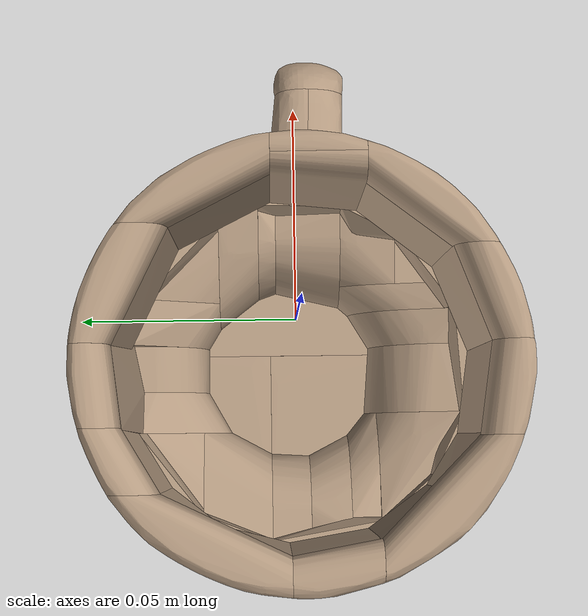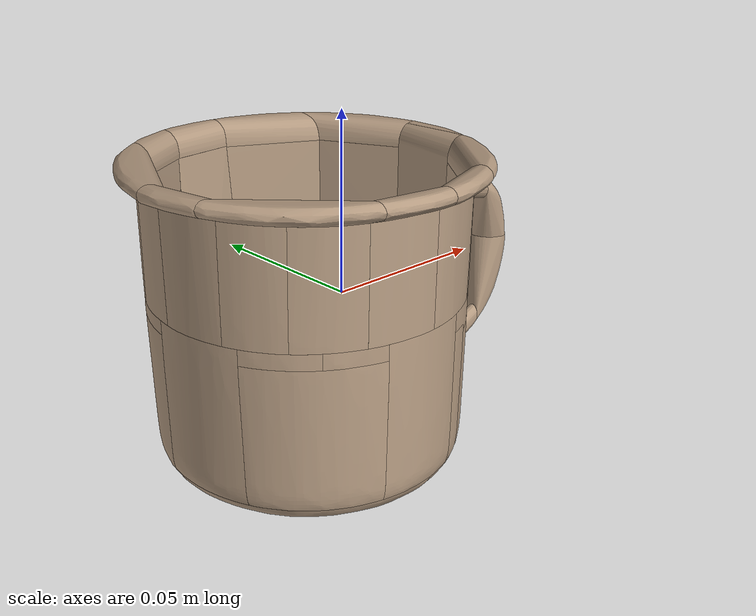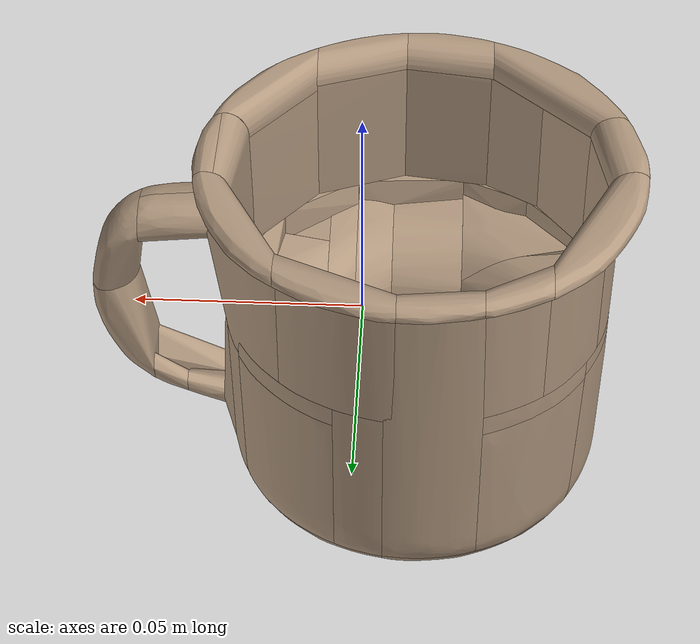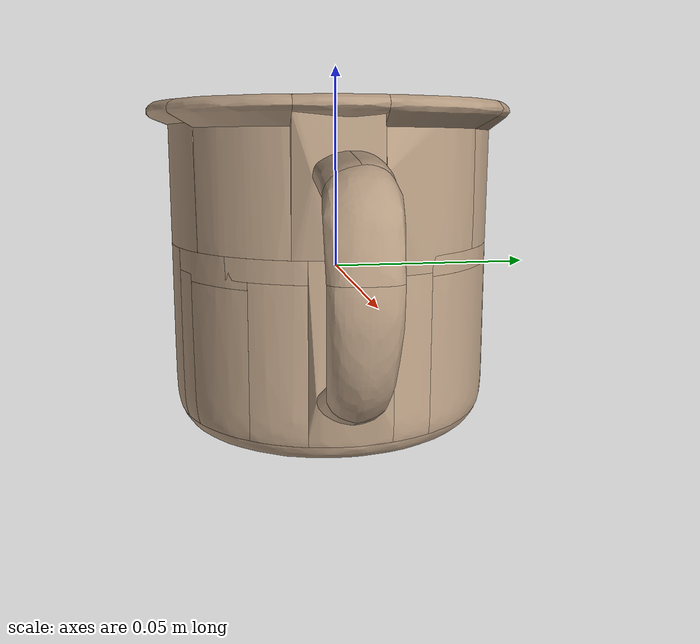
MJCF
<mujoco model="mug"><asset><mesh name="mug_part0" file="../ycb_mjcf/mug/part_00.stl" /><mesh name="mug_part1" file="../ycb_mjcf/mug/part_01.stl" /><mesh name="mug_part2" file="../ycb_mjcf/mug/part_02.stl" /><mesh name="mug_part3" file="../ycb_mjcf/mug/part_03.stl" /><mesh name="mug_part4" file="../ycb_mjcf/mug/part_04.stl" /><mesh name="mug_part5" file="../ycb_mjcf/mug/part_05.stl" /><mesh name="mug_part6" file="../ycb_mjcf/mug/part_06.stl" /><mesh name="mug_part7" file="../ycb_mjcf/mug/part_07.stl" /><mesh name="mug_part8" file="../ycb_mjcf/mug/part_08.stl" /><mesh name="mug_part9" file="../ycb_mjcf/mug/part_09.stl" /><mesh name="mug_part10" file="../ycb_mjcf/mug/part_10.stl" /><mesh name="mug_part11" file="../ycb_mjcf/mug/part_11.stl" /><mesh name="mug_part12" file="../ycb_mjcf/mug/part_12.stl" /><mesh name="mug_part13" file="../ycb_mjcf/mug/part_13.stl" /><mesh name="mug_part14" file="../ycb_mjcf/mug/part_14.stl" /><mesh name="mug_part15" file="../ycb_mjcf/mug/part_15.stl" /><mesh name="mug_part16" file="../ycb_mjcf/mug/part_16.stl" /><mesh name="mug_part17" file="../ycb_mjcf/mug/part_17.stl" /><mesh name="mug_part18" file="../ycb_mjcf/mug/part_18.stl" /><mesh name="mug_part19" file="../ycb_mjcf/mug/part_19.stl" /><mesh name="mug_part20" file="../ycb_mjcf/mug/part_20.stl" /><mesh name="mug_part21" file="../ycb_mjcf/mug/part_21.stl" /><mesh name="mug_part22" file="../ycb_mjcf/mug/part_22.stl" /><mesh name="mug_part23" file="../ycb_mjcf/mug/part_23.stl" /><mesh name="mug_part24" file="../ycb_mjcf/mug/part_24.stl" /><mesh name="mug_part25" file="../ycb_mjcf/mug/part_25.stl" /><mesh name="mug_part26" file="../ycb_mjcf/mug/part_26.stl" /><mesh name="mug_part27" file="../ycb_mjcf/mug/part_27.stl" /><mesh name="mug_part28" file="../ycb_mjcf/mug/part_28.stl" /><mesh name="mug_part29" file="../ycb_mjcf/mug/part_29.stl" /><mesh name="mug_part30" file="../ycb_mjcf/mug/part_30.stl" /><mesh name="mug_part31" file="../ycb_mjcf/mug/part_31.stl" /><mesh name="mug_part32" file="../ycb_mjcf/mug/part_32.stl" /><mesh name="mug_part33" file="../ycb_mjcf/mug/part_33.stl" /><mesh name="mug_part34" file="../ycb_mjcf/mug/part_34.stl" /><mesh name="mug_part35" file="../ycb_mjcf/mug/part_35.stl" /><mesh name="mug_part36" file="../ycb_mjcf/mug/part_36.stl" /><mesh name="mug_part37" file="../ycb_mjcf/mug/part_37.stl" /><mesh name="mug_part38" file="../ycb_mjcf/mug/part_38.stl" /><mesh name="mug_part39" file="../ycb_mjcf/mug/part_39.stl" /><mesh name="mug_part40" file="../ycb_mjcf/mug/part_40.stl" /><mesh name="mug_part41" file="../ycb_mjcf/mug/part_41.stl" /><mesh name="mug_part42" file="../ycb_mjcf/mug/part_42.stl" /><mesh name="mug_part43" file="../ycb_mjcf/mug/part_43.stl" /><mesh name="mug_part44" file="../ycb_mjcf/mug/part_44.stl" /><mesh name="mug_part45" file="../ycb_mjcf/mug/part_45.stl" /><mesh name="mug_part46" file="../ycb_mjcf/mug/part_46.stl" /><mesh name="mug_part47" file="../ycb_mjcf/mug/part_47.stl" /><mesh name="mug_part48" file="../ycb_mjcf/mug/part_48.stl" /><mesh name="mug_part49" file="../ycb_mjcf/mug/part_49.stl" /><mesh name="mug_part50" file="../ycb_mjcf/mug/part_50.stl" /><mesh name="mug_part51" file="../ycb_mjcf/mug/part_51.stl" /><mesh name="mug_part52" file="../ycb_mjcf/mug/part_52.stl" /><mesh name="mug_part53" file="../ycb_mjcf/mug/part_53.stl" /><mesh name="mug_part54" file="../ycb_mjcf/mug/part_54.stl" /><mesh name="mug_part55" file="../ycb_mjcf/mug/part_55.stl" /><mesh name="mug_part56" file="../ycb_mjcf/mug/part_56.stl" /><mesh name="mug_part57" file="../ycb_mjcf/mug/part_57.stl" /><mesh name="mug_part58" file="../ycb_mjcf/mug/part_58.stl" /><mesh name="mug_part59" file="../ycb_mjcf/mug/part_59.stl" /><mesh name="mug_part60" file="../ycb_mjcf/mug/part_60.stl" /><mesh name="mug_part61" file="../ycb_mjcf/mug/part_61.stl" /><mesh name="mug_visual" file="../ycb_mjcf/mug/visual.stl" /></asset><worldbody><body><body name="object"><geom type="mesh" mesh="mug_part0" group="0" condim="4" solimp="0.9 0.95 0.001" solref="0.02 1" friction="0.95 0.3 0.1" rgba="0.7 0.6 0.5 1" /><geom type="mesh" mesh="mug_part1" group="0" condim="4" solimp="0.9 0.95 0.001" solref="0.02 1" friction="0.95 0.3 0.1" rgba="0.7 0.6 0.5 1" /><geom type="mesh" mesh="mug_part2" group="0" condim="4" solimp="0.9 0.95 0.001" solref="0.02 1" friction="0.95 0.3 0.1" rgba="0.7 0.6 0.5 1" /><geom type="mesh" mesh="mug_part3" group="0" condim="4" solimp="0.9 0.95 0.001" solref="0.02 1" friction="0.95 0.3 0.1" rgba="0.7 0.6 0.5 1" /><geom type="mesh" mesh="mug_part4" group="0" condim="4" solimp="0.9 0.95 0.001" solref="0.02 1" friction="0.95 0.3 0.1" rgba="0.7 0.6 0.5 1" /><geom type="mesh" mesh="mug_part5" group="0" condim="4" solimp="0.9 0.95 0.001" solref="0.02 1" friction="0.95 0.3 0.1" rgba="0.7 0.6 0.5 1" /><geom type="mesh" mesh="mug_part6" group="0" condim="4" solimp="0.9 0.95 0.001" solref="0.02 1" friction="0.95 0.3 0.1" rgba="0.7 0.6 0.5 1" /><geom type="mesh" mesh="mug_part7" group="0" condim="4" solimp="0.9 0.95 0.001" solref="0.02 1" friction="0.95 0.3 0.1" rgba="0.7 0.6 0.5 1" /><geom type="mesh" mesh="mug_part8" group="0" condim="4" solimp="0.9 0.95 0.001" solref="0.02 1" friction="0.95 0.3 0.1" rgba="0.7 0.6 0.5 1" /><geom type="mesh" mesh="mug_part9" group="0" condim="4" solimp="0.9 0.95 0.001" solref="0.02 1" friction="0.95 0.3 0.1" rgba="0.7 0.6 0.5 1" /><geom type="mesh" mesh="mug_part10" group="0" condim="4" solimp="0.9 0.95 0.001" solref="0.02 1" friction="0.95 0.3 0.1" rgba="0.7 0.6 0.5 1" /><geom type="mesh" mesh="mug_part11" group="0" condim="4" solimp="0.9 0.95 0.001" solref="0.02 1" friction="0.95 0.3 0.1" rgba="0.7 0.6 0.5 1" /><geom type="mesh" mesh="mug_part12" group="0" condim="4" solimp="0.9 0.95 0.001" solref="0.02 1" friction="0.95 0.3 0.1" rgba="0.7 0.6 0.5 1" /><geom type="mesh" mesh="mug_part13" group="0" condim="4" solimp="0.9 0.95 0.001" solref="0.02 1" friction="0.95 0.3 0.1" rgba="0.7 0.6 0.5 1" /><geom type="mesh" mesh="mug_part14" group="0" condim="4" solimp="0.9 0.95 0.001" solref="0.02 1" friction="0.95 0.3 0.1" rgba="0.7 0.6 0.5 1" /><geom type="mesh" mesh="mug_part15" group="0" condim="4" solimp="0.9 0.95 0.001" solref="0.02 1" friction="0.95 0.3 0.1" rgba="0.7 0.6 0.5 1" /><geom type="mesh" mesh="mug_part16" group="0" condim="4" solimp="0.9 0.95 0.001" solref="0.02 1" friction="0.95 0.3 0.1" rgba="0.7 0.6 0.5 1" /><geom type="mesh" mesh="mug_part17" group="0" condim="4" solimp="0.9 0.95 0.001" solref="0.02 1" friction="0.95 0.3 0.1" rgba="0.7 0.6 0.5 1" /><geom type="mesh" mesh="mug_part18" group="0" condim="4" solimp="0.9 0.95 0.001" solref="0.02 1" friction="0.95 0.3 0.1" rgba="0.7 0.6 0.5 1" /><geom type="mesh" mesh="mug_part19" group="0" condim="4" solimp="0.9 0.95 0.001" solref="0.02 1" friction="0.95 0.3 0.1" rgba="0.7 0.6 0.5 1" /><geom type="mesh" mesh="mug_part20" group="0" condim="4" solimp="0.9 0.95 0.001" solref="0.02 1" friction="0.95 0.3 0.1" rgba="0.7 0.6 0.5 1" /><geom type="mesh" mesh="mug_part21" group="0" condim="4" solimp="0.9 0.95 0.001" solref="0.02 1" friction="0.95 0.3 0.1" rgba="0.7 0.6 0.5 1" /><geom type="mesh" mesh="mug_part22" group="0" condim="4" solimp="0.9 0.95 0.001" solref="0.02 1" friction="0.95 0.3 0.1" rgba="0.7 0.6 0.5 1" /><geom type="mesh" mesh="mug_part23" group="0" condim="4" solimp="0.9 0.95 0.001" solref="0.02 1" friction="0.95 0.3 0.1" rgba="0.7 0.6 0.5 1" /><geom type="mesh" mesh="mug_part24" group="0" condim="4" solimp="0.9 0.95 0.001" solref="0.02 1" friction="0.95 0.3 0.1" rgba="0.7 0.6 0.5 1" /><geom type="mesh" mesh="mug_part25" group="0" condim="4" solimp="0.9 0.95 0.001" solref="0.02 1" friction="0.95 0.3 0.1" rgba="0.7 0.6 0.5 1" /><geom type="mesh" mesh="mug_part26" group="0" condim="4" solimp="0.9 0.95 0.001" solref="0.02 1" friction="0.95 0.3 0.1" rgba="0.7 0.6 0.5 1" /><geom type="mesh" mesh="mug_part27" group="0" condim="4" solimp="0.9 0.95 0.001" solref="0.02 1" friction="0.95 0.3 0.1" rgba="0.7 0.6 0.5 1" /><geom type="mesh" mesh="mug_part28" group="0" condim="4" solimp="0.9 0.95 0.001" solref="0.02 1" friction="0.95 0.3 0.1" rgba="0.7 0.6 0.5 1" /><geom type="mesh" mesh="mug_part29" group="0" condim="4" solimp="0.9 0.95 0.001" solref="0.02 1" friction="0.95 0.3 0.1" rgba="0.7 0.6 0.5 1" /><geom type="mesh" mesh="mug_part30" group="0" condim="4" solimp="0.9 0.95 0.001" solref="0.02 1" friction="0.95 0.3 0.1" rgba="0.7 0.6 0.5 1" /><geom type="mesh" mesh="mug_part31" group="0" condim="4" solimp="0.9 0.95 0.001" solref="0.02 1" friction="0.95 0.3 0.1" rgba="0.7 0.6 0.5 1" /><geom type="mesh" mesh="mug_part32" group="0" condim="4" solimp="0.9 0.95 0.001" solref="0.02 1" friction="0.95 0.3 0.1" rgba="0.7 0.6 0.5 1" /><geom type="mesh" mesh="mug_part33" group="0" condim="4" solimp="0.9 0.95 0.001" solref="0.02 1" friction="0.95 0.3 0.1" rgba="0.7 0.6 0.5 1" /><geom type="mesh" mesh="mug_part34" group="0" condim="4" solimp="0.9 0.95 0.001" solref="0.02 1" friction="0.95 0.3 0.1" rgba="0.7 0.6 0.5 1" /><geom type="mesh" mesh="mug_part35" group="0" condim="4" solimp="0.9 0.95 0.001" solref="0.02 1" friction="0.95 0.3 0.1" rgba="0.7 0.6 0.5 1" /><geom type="mesh" mesh="mug_part36" group="0" condim="4" solimp="0.9 0.95 0.001" solref="0.02 1" friction="0.95 0.3 0.1" rgba="0.7 0.6 0.5 1" /><geom type="mesh" mesh="mug_part37" group="0" condim="4" solimp="0.9 0.95 0.001" solref="0.02 1" friction="0.95 0.3 0.1" rgba="0.7 0.6 0.5 1" /><geom type="mesh" mesh="mug_part38" group="0" condim="4" solimp="0.9 0.95 0.001" solref="0.02 1" friction="0.95 0.3 0.1" rgba="0.7 0.6 0.5 1" /><geom type="mesh" mesh="mug_part39" group="0" condim="4" solimp="0.9 0.95 0.001" solref="0.02 1" friction="0.95 0.3 0.1" rgba="0.7 0.6 0.5 1" /><geom type="mesh" mesh="mug_part40" group="0" condim="4" solimp="0.9 0.95 0.001" solref="0.02 1" friction="0.95 0.3 0.1" rgba="0.7 0.6 0.5 1" /><geom type="mesh" mesh="mug_part41" group="0" condim="4" solimp="0.9 0.95 0.001" solref="0.02 1" friction="0.95 0.3 0.1" rgba="0.7 0.6 0.5 1" /><geom type="mesh" mesh="mug_part42" group="0" condim="4" solimp="0.9 0.95 0.001" solref="0.02 1" friction="0.95 0.3 0.1" rgba="0.7 0.6 0.5 1" /><geom type="mesh" mesh="mug_part43" group="0" condim="4" solimp="0.9 0.95 0.001" solref="0.02 1" friction="0.95 0.3 0.1" rgba="0.7 0.6 0.5 1" /><geom type="mesh" mesh="mug_part44" group="0" condim="4" solimp="0.9 0.95 0.001" solref="0.02 1" friction="0.95 0.3 0.1" rgba="0.7 0.6 0.5 1" /><geom type="mesh" mesh="mug_part45" group="0" condim="4" solimp="0.9 0.95 0.001" solref="0.02 1" friction="0.95 0.3 0.1" rgba="0.7 0.6 0.5 1" /><geom type="mesh" mesh="mug_part46" group="0" condim="4" solimp="0.9 0.95 0.001" solref="0.02 1" friction="0.95 0.3 0.1" rgba="0.7 0.6 0.5 1" /><geom type="mesh" mesh="mug_part47" group="0" condim="4" solimp="0.9 0.95 0.001" solref="0.02 1" friction="0.95 0.3 0.1" rgba="0.7 0.6 0.5 1" /><geom type="mesh" mesh="mug_part48" group="0" condim="4" solimp="0.9 0.95 0.001" solref="0.02 1" friction="0.95 0.3 0.1" rgba="0.7 0.6 0.5 1" /><geom type="mesh" mesh="mug_part49" group="0" condim="4" solimp="0.9 0.95 0.001" solref="0.02 1" friction="0.95 0.3 0.1" rgba="0.7 0.6 0.5 1" /><geom type="mesh" mesh="mug_part50" group="0" condim="4" solimp="0.9 0.95 0.001" solref="0.02 1" friction="0.95 0.3 0.1" rgba="0.7 0.6 0.5 1" /><geom type="mesh" mesh="mug_part51" group="0" condim="4" solimp="0.9 0.95 0.001" solref="0.02 1" friction="0.95 0.3 0.1" rgba="0.7 0.6 0.5 1" /><geom type="mesh" mesh="mug_part52" group="0" condim="4" solimp="0.9 0.95 0.001" solref="0.02 1" friction="0.95 0.3 0.1" rgba="0.7 0.6 0.5 1" /><geom type="mesh" mesh="mug_part53" group="0" condim="4" solimp="0.9 0.95 0.001" solref="0.02 1" friction="0.95 0.3 0.1" rgba="0.7 0.6 0.5 1" /><geom type="mesh" mesh="mug_part54" group="0" condim="4" solimp="0.9 0.95 0.001" solref="0.02 1" friction="0.95 0.3 0.1" rgba="0.7 0.6 0.5 1" /><geom type="mesh" mesh="mug_part55" group="0" condim="4" solimp="0.9 0.95 0.001" solref="0.02 1" friction="0.95 0.3 0.1" rgba="0.7 0.6 0.5 1" /><geom type="mesh" mesh="mug_part56" group="0" condim="4" solimp="0.9 0.95 0.001" solref="0.02 1" friction="0.95 0.3 0.1" rgba="0.7 0.6 0.5 1" /><geom type="mesh" mesh="mug_part57" group="0" condim="4" solimp="0.9 0.95 0.001" solref="0.02 1" friction="0.95 0.3 0.1" rgba="0.7 0.6 0.5 1" /><geom type="mesh" mesh="mug_part58" group="0" condim="4" solimp="0.9 0.95 0.001" solref="0.02 1" friction="0.95 0.3 0.1" rgba="0.7 0.6 0.5 1" /><geom type="mesh" mesh="mug_part59" group="0" condim="4" solimp="0.9 0.95 0.001" solref="0.02 1" friction="0.95 0.3 0.1" rgba="0.7 0.6 0.5 1" /><geom type="mesh" mesh="mug_part60" group="0" condim="4" solimp="0.9 0.95 0.001" solref="0.02 1" friction="0.95 0.3 0.1" rgba="0.7 0.6 0.5 1" /><geom type="mesh" mesh="mug_part61" group="0" condim="4" solimp="0.9 0.95 0.001" solref="0.02 1" friction="0.95 0.3 0.1" rgba="0.7 0.6 0.5 1" /><geom type="mesh" mesh="mug_visual" group="1" contype="0" conaffinity="0" mass="0" rgba="0.78 0.72 0.6 1" /></body><site name="bottom_site" rgba="0 0 0 0" size="0.005" pos="0.000000 0.000000 -0.040651" /><site name="top_site" rgba="0 0 0 0" size="0.005" pos="0.000000 0.000000 0.040651" /><site name="horizontal_radius_site" rgba="0 0 0 0" size="0.005" pos="0.074764 0.074764 0.000000" /></body></worldbody></mujoco>
